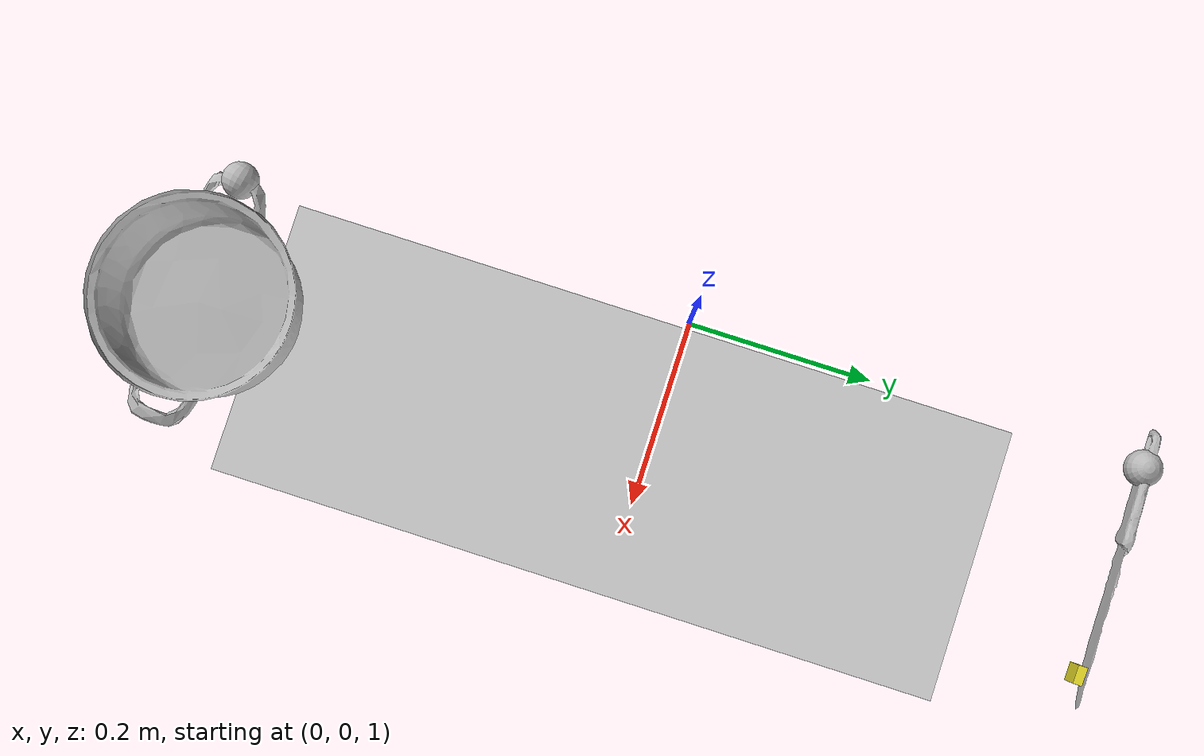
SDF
<?xml version='1.0'?>
<sdf version="1.6">
    <world name="b_pot_b_knife_v">

        <include>
            <uri>model://sun</uri>
        </include>

        <include>
            <uri>model://ground_plane</uri>
        </include>

        <include>
            <uri>model://b_knife</uri>
            <pose>0.090993 0.503448 0.999041 -1.609842 0 0</pose>
        </include>

        <include>
            <uri>model://butter_box</uri>
            <pose>0.226360 0.495670 0.996721 1.200479 1.549194 2.743074</pose>
            <plugin name="stick" filename="libStickPlugin.so">
              <parentLinkName>link</parentLinkName>
              <childLinkName>b_knife::link</childLinkName>
              <force>5</force>
            </plugin>
        </include>

        <include>
            <uri>model://b_pot</uri>
            <pose>0.133471 -0.503990 0.971217 0 0 0</pose>
        </include>

        <!-- Left Gripper -->
        <include>
            <uri>model://gripper</uri>
            <name>left_ee</name>
            <pose>0 0.5 1 0 0 0</pose>

            <plugin name="l_force_controller" filename="libvelocity_controller_plugin.so">
              <linkName>link</linkName>
              <topicName>set_l_ee_twist</topicName>
              <gains>
                <linear>
                  <P>100.0</P>
                  <I>0.0</I>
                  <D>25.0</D>
                </linear>
                <angular>
                  <P>100.0</P>
                  <I>0.0</I>
                  <D>25.0</D>
                </angular>
              </gains>
            </plugin>

            <plugin name="l_grip" filename="libGripPlugin.so">
              <parentLinkName>link</parentLinkName>
              <childLinkName>b_knife::link</childLinkName>
              <relativePose>0.090993 0.003448 -0.000959 -1.60984 0 0</relativePose>
            </plugin>

            <plugin name="l_tf_broadcaster" filename="libtf_broadcaster_plugin.so">
              <linkName>link</linkName>
              <frameName>l_gripper_tool_frame</frameName>
            </plugin>
        </include>

        <!-- Right Gripper -->
        <include>
            <uri>model://gripper</uri>
            <name>right_ee</name>
            <pose>0 -0.5 1 1.547368 1.402341 1.343703</pose>

            <plugin name="r_force_controller" filename="libvelocity_controller_plugin.so">
              <linkName>link</linkName>
              <topicName>set_r_ee_twist</topicName>
              <gains>
                <linear>
                  <P>100.0</P>
                  <I>0.0</I>
                  <D>25.0</D>
                </linear>
                <angular>
                  <P>100.0</P>
                  <I>0.0</I>
                  <D>25.0</D>
                </angular>
              </gains>
            </plugin>

            <plugin name="r_grip" filename="libGripPlugin.so">
              <parentLinkName>link</parentLinkName>
              <childLinkName>b_pot::link</childLinkName>
              <relativePose>0.023942 0.0237816 0.132364 -1.55141 -1.36676 1.3834</relativePose>
            </plugin>

            <plugin name="r_tf_broadcaster" filename="libtf_broadcaster_plugin.so">
              <linkName>link</linkName>
              <frameName>r_gripper_tool_frame</frameName>
            </plugin>
        </include>

        <plugin name="feature_visualization_plugin" filename="libgiskard_visualization_plugin.so"></plugin>

        <gui>
            <camera name='user_camera'>
                <pose>1.700789 1.175709 1.670612 0 0.375643 -2.675000</pose>
                <view_controller>orbit</view_controller>
            </camera>
        </gui>

    </world>
</sdf>

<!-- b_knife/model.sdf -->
<sdf version='1.6'>
    <model name='b_knife'>
        <static>false</static>
        <pose>0 0 0 0 0 0</pose>

        <link name='link'>
            <inertial>
                <mass>0.40</mass>
                <pose>0.000382297035518770	-0.000149204207528814	0.00495379249275721 0 0 0</pose>
                <inertia>
                    <ixx>7.972462473661376e-05</ixx>
                    <ixy>0.0</ixy>
                    <ixz>0.0</ixz>
                    <iyy>9.743942735555959e-05</iyy>
                    <iyz>0.0</iyz>
                    <izz>3.897022921041362e-05</izz>
                </inertia>
            </inertial>
            <sensor name="tool_contact_sensor" type="contact">
				<always_on>true</always_on>
				<update_rate>30.0</update_rate>
				<contact>
					<collision>collision</collision>
				</contact>
				<plugin name="tool_bumper" filename="libgazebo_ros_bumper.so">
					<bumperTopicName>tool_contact_sensor_state</bumperTopicName>
					<frameName>world</frameName>
				</plugin>
			</sensor>
            <collision name='collision'>
                <geometry>
                    <mesh>
                        <uri>model://b_knife/b_knife.dae</uri>
                    </mesh>
                </geometry>
                <surface>
                    <friction>
                        <ode>
                            <mu>0.2</mu>
                            <mu2>0.2</mu2>
                        </ode>
                    </friction>
                </surface>
            </collision>
            <visual name='visual'>
                <geometry>
                    <mesh>
                        <uri>model://b_knife/b_knife.dae</uri>
                    </mesh>
                </geometry>
            </visual>
        </link>
    </model>
</sdf>

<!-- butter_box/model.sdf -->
<sdf version='1.6'>
    <model name='butter_box'>
        <static>false</static>
        <pose>0 0 0 0 0 0</pose>
        <link name='link'>
            <pose>0 0 0 0 0 0</pose>
            <inertial>
                <mass>0.001</mass>
                <pose>0 0 0 0 0 0</pose>
                <inertia>
                    <ixx>0.00000004167</ixx>
                    <iyy>0.00000008333</iyy>
                    <izz>0.00000010833</izz>
                    <ixy>0</ixy>
                    <ixz>0</ixz>
                    <iyz>0</iyz>
                </inertia>
            </inertial>
            <collision name='collision'>
                <geometry>
                    <box>
                        <size>0.03 0.02 0.01</size>
                    </box>
                </geometry>
                <surface>
                    <friction>
                        <ode>
                            <mu>0.2</mu>
                            <mu2>0.2</mu2>
                        </ode>
                    </friction>
                </surface>
            </collision>
            <visual name='visual'>
                <geometry>
                    <box>
                        <size>0.03 0.02 0.01</size>
                    </box>
                </geometry>
                <material>
                    <script>
                        <name>Gazebo/Yellow</name>
                        <uri>file://media/materials/scripts/gazebo.material</uri>
                    </script>
                </material>
            </visual>
        </link>
    </model>
</sdf>

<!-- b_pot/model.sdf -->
<sdf version='1.6'>
    <model name='b_pot'>
        <static>false</static>
        <pose>0 0 0 0 0 0</pose>

        <link name='link'>
            <inertial>
                <mass>0.40</mass>
                <pose>0.000382297035518770	-0.000149204207528814	0.00495379249275721 0 0 0</pose>
                <inertia>
                    <ixx>7.972462473661376e-05</ixx>
                    <ixy>0.0</ixy>
                    <ixz>0.0</ixz>
                    <iyy>9.743942735555959e-05</iyy>
                    <iyz>0.0</iyz>
                    <izz>3.897022921041362e-05</izz>
                </inertia>
            </inertial>

            <collision name='collision'>
                <geometry>
                    <mesh>
                        <uri>model://b_pot/b_pot.dae</uri>
                    </mesh>
                </geometry>
                <surface>
                    <friction>
                        <ode>
                            <mu>0.2</mu>
                            <mu2>0.2</mu2>
                        </ode>
                    </friction>
                </surface>
            </collision>
            <visual name='visual'>
                <geometry>
                    <mesh>
                        <uri>model://b_pot/b_pot.dae</uri>
                    </mesh>
                </geometry>
            </visual>
        </link>
    </model>
</sdf>

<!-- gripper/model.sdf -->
<sdf version='1.6'>
    <model name='gripper'>
        <static>false</static>
        <allow_auto_disable>false</allow_auto_disable>

        <pose>0 0 0 0 0 0</pose>

        <link name='link'>
            <pose>0 0 0 0 0 0</pose>

            <gravity>false</gravity>

            <visual name='visual'>
                <geometry>
                    <sphere>
                        <radius>0.02</radius>
                    </sphere>
                </geometry>
            </visual>

        </link>
    </model>
</sdf>
